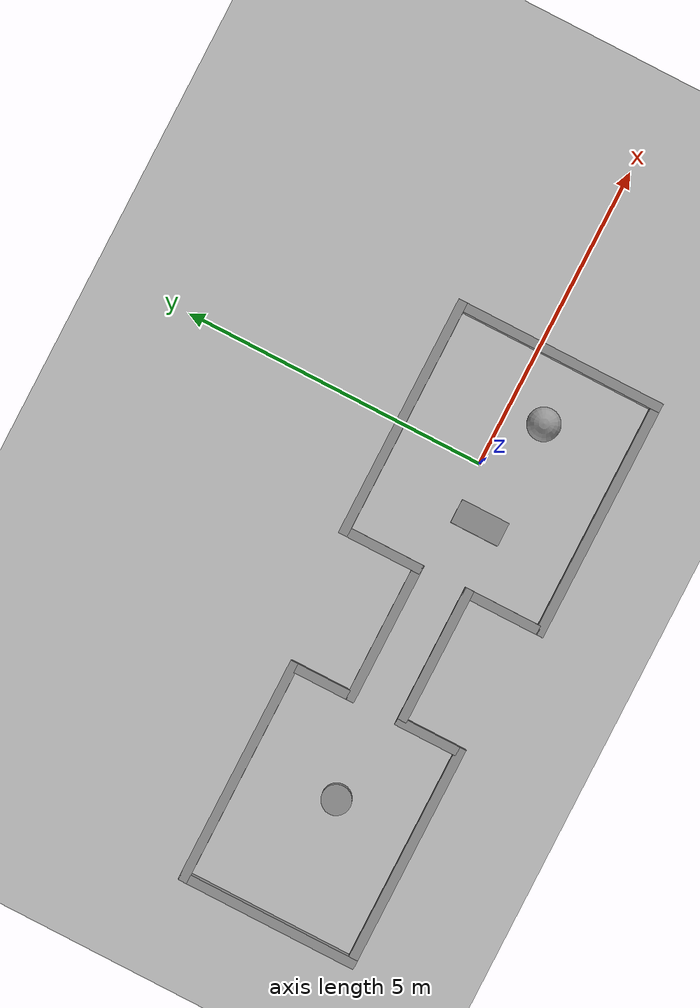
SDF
<sdf version="1.7">
 <world name="default">
  <light name="sun" type="directional">
   <pose>0 0 10 0 -0 0</pose>
   <diffuse>0.8 0.8 0.8 1</diffuse>
   <specular>0.2 0.2 0.2 1</specular>
   <attenuation>
    <range>1000</range>
    <constant>0.9</constant>
    <linear>0.01</linear>
    <quadratic>0.001</quadratic>
   </attenuation>
   <direction>-0.5 0.1 -0.9</direction>
   <spot><inner_angle>0</inner_angle><outer_angle>0</outer_angle><falloff>0</falloff></spot>
  </light>
  <model name="2rooms">
   <pose>-2.825 -0.314022 -1.05149 0.00093 -0 0</pose>
   <link name="Wall_15">
    <collision name="Wall_15_Collision">
     <geometry><box><size>4 0.15 0.4</size></box></geometry>
     <pose>0 0 1.25 0 -0 0</pose>
    </collision>
    <visual name="Wall_15_Visual">
     <pose>0 0 1.25 0 -0 0</pose>
     <geometry><box><size>4 0.15 0.4</size></box></geometry>
     <material>
      <script><uri>file://media/materials/scripts/gazebo.material</uri><name>Gazebo/Grey</name></script>
      <ambient>1 1 1 1</ambient>
     </material>
     <meta><layer>0</layer></meta>
    </visual>
    <pose>2.9 1.675 0 0 -0 0</pose>
    <inertial>
     <inertia><ixx>1</ixx><ixy>0</ixy><ixz>0</ixz><iyy>1</iyy><iyz>0</iyz><izz>1</izz></inertia>
     <mass>1</mass>
    </inertial>
    <kinematic>1</kinematic>
   </link>
   <link name="Wall_16">
    <collision name="Wall_16_Collision">
     <geometry><box><size>3.5 0.15 0.4</size></box></geometry>
     <pose>0 0 1.25 0 -0 0</pose>
    </collision>
    <visual name="Wall_16_Visual">
     <pose>0 0 1.25 0 -0 0</pose>
     <geometry><box><size>3.5 0.15 0.4</size></box></geometry>
     <material>
      <script><uri>file://media/materials/scripts/gazebo.material</uri><name>Gazebo/Grey</name></script>
      <ambient>1 1 1 1</ambient>
     </material>
     <meta><layer>0</layer></meta>
    </visual>
    <pose>4.825 0 0 0 -0 -1.5708</pose>
    <inertial>
     <inertia><ixx>1</ixx><ixy>0</ixy><ixz>0</ixz><iyy>1</iyy><iyz>0</iyz><izz>1</izz></inertia>
     <mass>1</mass>
    </inertial>
    <kinematic>1</kinematic>
   </link>
   <link name="Wall_17">
    <collision name="Wall_17_Collision">
     <geometry><box><size>4 0.15 0.4</size></box></geometry>
     <pose>0 0 1.25 0 -0 0</pose>
    </collision>
    <visual name="Wall_17_Visual">
     <pose>0 0 1.25 0 -0 0</pose>
     <geometry><box><size>4 0.15 0.4</size></box></geometry>
     <material>
      <script><uri>file://media/materials/scripts/gazebo.material</uri><name>Gazebo/Grey</name></script>
      <ambient>1 1 1 1</ambient>
     </material>
     <meta><layer>0</layer></meta>
    </visual>
    <pose>2.9 -1.675 0 0 -0 3.14159</pose>
    <inertial>
     <inertia><ixx>1</ixx><ixy>0</ixy><ixz>0</ixz><iyy>1</iyy><iyz>0</iyz><izz>1</izz></inertia>
     <mass>1</mass>
    </inertial>
    <kinematic>1</kinematic>
   </link>
   <link name="Wall_18">
    <collision name="Wall_18_Collision">
     <geometry><box><size>1.3 0.15 0.4</size></box></geometry>
     <pose>0 0 1.25 0 -0 0</pose>
    </collision>
    <visual name="Wall_18_Visual">
     <pose>0 0 1.25 0 -0 0</pose>
     <geometry><box><size>1.3 0.15 0.4</size></box></geometry>
     <material>
      <script><uri>file://media/materials/scripts/gazebo.material</uri><name>Gazebo/Grey</name></script>
      <ambient>1 1 1 1</ambient>
     </material>
     <meta><layer>0</layer></meta>
    </visual>
    <pose>0.975 -1 0 0 -0 1.5708</pose>
    <inertial>
     <inertia><ixx>1</ixx><ixy>0</ixy><ixz>0</ixz><iyy>1</iyy><iyz>0</iyz><izz>1</izz></inertia>
     <mass>1</mass>
    </inertial>
    <kinematic>1</kinematic>
   </link>
   <link name="Wall_19">
    <collision name="Wall_19_Collision">
     <geometry><box><size>2.25 0.15 0.4</size></box></geometry>
     <pose>0 0.1 1.25 0 -0 0</pose>
    </collision>
    <visual name="Wall_19_Visual">
     <pose>0 0.1 1.25 0 -0 0</pose>
     <geometry><box><size>2.25 0.15 0.4</size></box></geometry>
     <material>
      <script><uri>file://media/materials/scripts/gazebo.material</uri><name>Gazebo/Grey</name></script>
      <ambient>1 1 1 1</ambient>
     </material>
     <meta><layer>0</layer></meta>
    </visual>
    <pose>-0.075 -0.325 0 0 -0 3.14159</pose>
    <inertial>
     <inertia><ixx>1</ixx><ixy>0</ixy><ixz>0</ixz><iyy>1</iyy><iyz>0</iyz><izz>1</izz></inertia>
     <mass>1</mass>
    </inertial>
    <kinematic>1</kinematic>
   </link>
   <link name="Wall_27">
    <collision name="Wall_27_Collision">
     <geometry><box><size>2.35 0.15 0.4</size></box></geometry>
     <pose>0 0.1 1.25 0 -0 0</pose>
    </collision>
    <visual name="Wall_27_Visual">
     <pose>0 0.1 1.25 0 -0 0</pose>
     <geometry><box><size>2.35 0.15 0.4</size></box></geometry>
     <material>
      <script><uri>file://media/materials/scripts/gazebo.material</uri><name>Gazebo/Grey</name></script>
      <ambient>1 1 1 1</ambient>
     </material>
     <meta><layer>0</layer></meta>
    </visual>
    <pose>-0.125 0.325 0 0 -0 0</pose>
    <inertial>
     <inertia><ixx>1</ixx><ixy>0</ixy><ixz>0</ixz><iyy>1</iyy><iyz>0</iyz><izz>1</izz></inertia>
     <mass>1</mass>
    </inertial>
    <kinematic>1</kinematic>
   </link>
   <link name="Wall_28">
    <collision name="Wall_28_Collision">
     <geometry><box><size>1.3 0.15 0.4</size></box></geometry>
     <pose>0 0 1.25 0 -0 0</pose>
    </collision>
    <visual name="Wall_28_Visual">
     <pose>0 0 1.25 0 -0 0</pose>
     <geometry><box><size>1.3 0.15 0.4</size></box></geometry>
     <material>
      <script><uri>file://media/materials/scripts/gazebo.material</uri><name>Gazebo/Grey</name></script>
      <ambient>1 1 1 1</ambient>
     </material>
     <meta><layer>0</layer></meta>
    </visual>
    <pose>0.975 1 0 0 -0 1.5708</pose>
    <inertial>
     <inertia><ixx>1</ixx><ixy>0</ixy><ixz>0</ixz><iyy>1</iyy><iyz>0</iyz><izz>1</izz></inertia>
     <mass>1</mass>
    </inertial>
    <kinematic>1</kinematic>
   </link>
   <link name="Wall_30">
    <collision name="Wall_30_Collision">
     <geometry><box><size>3 0.15 0.4</size></box></geometry>
     <pose>0 0 1.25 0 -0 0</pose>
    </collision>
    <visual name="Wall_30_Visual">
     <pose>0 0 1.25 0 -0 0</pose>
     <geometry><box><size>3 0.15 0.4</size></box></geometry>
     <material>
      <script><uri>file://media/materials/scripts/gazebo.material</uri><name>Gazebo/Grey</name></script>
      <ambient>1 1 1 1</ambient>
     </material>
     <meta><layer>0</layer></meta>
    </visual>
    <pose>-4.825 0 0 0 -0 1.5708</pose>
    <inertial>
     <inertia><ixx>1</ixx><ixy>0</ixy><ixz>0</ixz><iyy>1</iyy><iyz>0</iyz><izz>1</izz></inertia>
     <mass>1</mass>
    </inertial>
    <kinematic>1</kinematic>
   </link>
   <link name="Wall_31">
    <collision name="Wall_31_Collision">
     <geometry><box><size>3.75 0.15 0.4</size></box></geometry>
     <pose>0 0 1.25 0 -0 0</pose>
    </collision>
    <visual name="Wall_31_Visual">
     <pose>0 0 1.25 0 -0 0</pose>
     <geometry><box><size>3.75 0.15 0.4</size></box></geometry>
     <material>
      <script><uri>file://media/materials/scripts/gazebo.material</uri><name>Gazebo/Grey</name></script>
      <ambient>1 1 1 1</ambient>
     </material>
     <meta><layer>0</layer></meta>
    </visual>
    <pose>-3.025 1.425 0 0 -0 0</pose>
    <inertial>
     <inertia><ixx>1</ixx><ixy>0</ixy><ixz>0</ixz><iyy>1</iyy><iyz>0</iyz><izz>1</izz></inertia>
     <mass>1</mass>
    </inertial>
    <kinematic>1</kinematic>
   </link>
   <link name="Wall_35">
    <collision name="Wall_35_Collision">
     <geometry><box><size>1.0 0.15 0.4</size></box></geometry>
     <pose>0 0 1.25 0 -0 0</pose>
    </collision>
    <visual name="Wall_35_Visual">
     <pose>0 0 1.25 0 -0 0</pose>
     <geometry><box><size>1.0 0.15 0.4</size></box></geometry>
     <material>
      <script><uri>file://media/materials/scripts/gazebo.material</uri><name>Gazebo/Grey</name></script>
      <ambient>1 1 1 1</ambient>
     </material>
     <meta><layer>0</layer></meta>
    </visual>
    <pose>-1.225 0.875 0 0 -0 -1.5708</pose>
    <inertial>
     <inertia><ixx>1</ixx><ixy>0</ixy><ixz>0</ixz><iyy>1</iyy><iyz>0</iyz><izz>1</izz></inertia>
     <mass>1</mass>
    </inertial>
    <kinematic>1</kinematic>
   </link>
   <link name="Wall_37">
    <collision name="Wall_37_Collision">
     <geometry><box><size>3.75 0.15 0.4</size></box></geometry>
     <pose>0 0 1.25 0 -0 0</pose>
    </collision>
    <visual name="Wall_37_Visual">
     <pose>0 0 1.25 0 -0 0</pose>
     <geometry><box><size>3.75 0.15 0.4</size></box></geometry>
     <material>
      <script><uri>file://media/materials/scripts/gazebo.material</uri><name>Gazebo/Grey</name></script>
      <ambient>1 1 1 1</ambient>
     </material>
     <meta><layer>0</layer></meta>
    </visual>
    <pose>-3.025 -1.425 0 0 -0 0</pose>
    <inertial>
     <inertia><ixx>1</ixx><ixy>0</ixy><ixz>0</ixz><iyy>1</iyy><iyz>0</iyz><izz>1</izz></inertia>
     <mass>1</mass>
    </inertial>
    <kinematic>1</kinematic>
   </link>
   <link name="Wall_38">
    <collision name="Wall_38_Collision">
     <geometry><box><size>1.05 0.15 0.4</size></box></geometry>
     <pose>0 0 1.25 0 -0 0</pose>
    </collision>
    <visual name="Wall_38_Visual">
     <pose>0 0 1.25 0 -0 0</pose>
     <geometry><box><size>1.05 0.15 0.4</size></box></geometry>
     <material>
      <script><uri>file://media/materials/scripts/gazebo.material</uri><name>Gazebo/Grey</name></script>
      <ambient>1 1 1 1</ambient>
     </material>
     <meta><layer>0</layer></meta>
    </visual>
    <pose>-1.225 -0.875 0 0 -0 1.5708</pose>
    <inertial>
     <inertia><ixx>1</ixx><ixy>0</ixy><ixz>0</ixz><iyy>1</iyy><iyz>0</iyz><izz>1</izz></inertia>
     <mass>1</mass>
    </inertial>
    <kinematic>1</kinematic>
   </link>
   <static>0</static>
  </model>
  <model name="ground_plane">
   <static>1</static>
   <link name="link">
    <collision name="collision">
     <geometry><plane><normal>0 0 1</normal><size>100 100</size></plane></geometry>
     <surface><friction><ode><mu>100</mu><mu2>50</mu2></ode></friction></surface>
    </collision>
    <visual name="visual">
     <cast_shadows>0</cast_shadows>
     <geometry><plane><normal>0 0 1</normal><size>100 100</size></plane></geometry>
     <material>
      <script><uri>file://media/materials/scripts/gazebo.material</uri><name>Gazebo/Grey</name></script>
     </material>
    </visual>
    <kinematic>1</kinematic>
   </link>
  </model>
  <gravity>0 0 -9.8</gravity>
  <magnetic_field>6e-06 2.3e-05 -4.2e-05</magnetic_field>
  <atmosphere type="adiabatic"/>
  <physics type="ode">
   <max_step_size>0.001</max_step_size>
   <real_time_factor>1</real_time_factor>
   <real_time_update_rate>1000</real_time_update_rate>
  </physics>
  <scene><ambient>0.4 0.4 0.4 1</ambient><background>0.7 0.7 0.7 1</background><shadows>1</shadows></scene>
  <spherical_coordinates>
   <surface_model>EARTH_WGS84</surface_model>
   <latitude_deg>0</latitude_deg>
   <longitude_deg>0</longitude_deg>
   <elevation>0</elevation>
   <heading_deg>0</heading_deg>
  </spherical_coordinates>
  <model name="unit_box">
   <link name="link">
    <inertial>
     <mass>0.109627</mass>
     <inertia>
      <ixx>0.00699833</ixx>
      <ixy>0</ixy>
      <ixz>0</ixz>
      <iyy>0.00251217</iyy>
      <iyz>0</iyz>
      <izz>0.0073018</izz>
     </inertia>
    </inertial>
    <kinematic>1</kinematic>
    <pose>0.089784 -0.005804 -0.243894 0 -0 0</pose>
    <visual name="visual">
     <geometry><box><size>0.392559 0.803222 0.347683</size></box></geometry>
     <material>
      <script><name>Gazebo/Grey</name><uri>file://media/materials/scripts/gazebo.material</uri></script>
      <shader type="pixel"/>
     </material>
    </visual>
    <collision name="collision">
     <geometry><box><size>0.392559 0.803222 0.347683</size></box></geometry>
     <surface>
      <friction>
       <ode><mu>1</mu><mu2>1</mu2><fdir1>0 0 0</fdir1><slip1>0</slip1><slip2>0</slip2></ode>
       <torsional>
        <coefficient>1</coefficient>
        <patch_radius>0</patch_radius>
        <surface_radius>0</surface_radius>
        <use_patch_radius>1</use_patch_radius>
        <ode><slip>0</slip></ode>
       </torsional>
      </friction>
      <bounce><restitution_coefficient>0</restitution_coefficient><threshold>1e+06</threshold></bounce>
      <contact>
       <collide_without_contact>0</collide_without_contact>
       <collide_without_contact_bitmask>1</collide_without_contact_bitmask>
       <collide_bitmask>1</collide_bitmask>
       <ode>
        <soft_cfm>0</soft_cfm>
        <soft_erp>0.2</soft_erp>
        <kp>1e+13</kp>
        <kd>1</kd>
        <max_vel>0.01</max_vel>
        <min_depth>0</min_depth>
       </ode>
       <bullet>
        <split_impulse>1</split_impulse>
        <split_impulse_penetration_threshold>-0.01</split_impulse_penetration_threshold>
        <soft_cfm>0</soft_cfm>
        <soft_erp>0.2</soft_erp>
        <kp>1e+13</kp>
        <kd>1</kd>
       </bullet>
      </contact>
     </surface>
    </collision>
   </link>
   <link name="link_0">
    <inertial>
     <mass>0.154178</mass>
     <inertia>
      <ixx>0.00443302</ixx>
      <ixy>0</ixy>
      <ixz>0</ixz>
      <iyy>0.00443302</iyy>
      <iyz>0</iyz>
      <izz>0.00443302</izz>
     </inertia>
    </inertial>
    <pose>1.87133 -0.183001 -0.243894 0 -0 0</pose>
    <visual name="visual">
     <geometry><sphere><radius>0.268108</radius></sphere></geometry>
     <material>
      <lighting>1</lighting>
      <script><uri>file://media/materials/scripts/gazebo.material</uri><name>Gazebo/Grey</name></script>
      <shader type="pixel"/>
     </material>
    </visual>
    <collision name="collision">
     <geometry><sphere><radius>0.268108</radius></sphere></geometry>
     <surface>
      <friction>
       <ode><mu>1</mu><mu2>1</mu2><fdir1>0 0 0</fdir1><slip1>0</slip1><slip2>0</slip2></ode>
       <torsional>
        <coefficient>1</coefficient>
        <patch_radius>0</patch_radius>
        <surface_radius>0</surface_radius>
        <use_patch_radius>1</use_patch_radius>
        <ode><slip>0</slip></ode>
       </torsional>
      </friction>
      <bounce><restitution_coefficient>0</restitution_coefficient><threshold>1e+06</threshold></bounce>
      <contact>
       <collide_without_contact>0</collide_without_contact>
       <collide_without_contact_bitmask>1</collide_without_contact_bitmask>
       <collide_bitmask>1</collide_bitmask>
       <ode>
        <soft_cfm>0</soft_cfm>
        <soft_erp>0.2</soft_erp>
        <kp>1e+13</kp>
        <kd>1</kd>
        <max_vel>0.01</max_vel>
        <min_depth>0</min_depth>
       </ode>
       <bullet>
        <split_impulse>1</split_impulse>
        <split_impulse_penetration_threshold>-0.01</split_impulse_penetration_threshold>
        <soft_cfm>0</soft_cfm>
        <soft_erp>0.2</soft_erp>
        <kp>1e+13</kp>
        <kd>1</kd>
       </bullet>
      </contact>
     </surface>
    </collision>
    <kinematic>1</kinematic>
   </link>
   <link name="link_1">
    <inertial>
     <mass>0.103896</mass>
     <inertia>
      <ixx>0.00326823</ixx>
      <ixy>0</ixy>
      <ixz>0</ixz>
      <iyy>0.00326823</iyy>
      <iyz>0</iyz>
      <izz>0.0029753</izz>
     </inertia>
    </inertial>
    <pose>-4.64664 0.003473 -0.243894 0 -0 0</pose>
    <visual name="visual">
     <geometry><cylinder><radius>0.239321</radius><length>0.453494</length></cylinder></geometry>
     <material>
      <lighting>1</lighting>
      <script><uri>file://media/materials/scripts/gazebo.material</uri><name>Gazebo/Grey</name></script>
      <shader type="pixel"/>
     </material>
    </visual>
    <collision name="collision">
     <geometry><cylinder><radius>0.239321</radius><length>0.453494</length></cylinder></geometry>
     <surface>
      <friction>
       <ode><mu>1</mu><mu2>1</mu2><fdir1>0 0 0</fdir1><slip1>0</slip1><slip2>0</slip2></ode>
       <torsional>
        <coefficient>1</coefficient>
        <patch_radius>0</patch_radius>
        <surface_radius>0</surface_radius>
        <use_patch_radius>1</use_patch_radius>
        <ode><slip>0</slip></ode>
       </torsional>
      </friction>
      <bounce><restitution_coefficient>0</restitution_coefficient><threshold>1e+06</threshold></bounce>
      <contact>
       <collide_without_contact>0</collide_without_contact>
       <collide_without_contact_bitmask>1</collide_without_contact_bitmask>
       <collide_bitmask>1</collide_bitmask>
       <ode>
        <soft_cfm>0</soft_cfm>
        <soft_erp>0.2</soft_erp>
        <kp>1e+13</kp>
        <kd>1</kd>
        <max_vel>0.01</max_vel>
        <min_depth>0</min_depth>
       </ode>
       <bullet>
        <split_impulse>1</split_impulse>
        <split_impulse_penetration_threshold>-0.01</split_impulse_penetration_threshold>
        <soft_cfm>0</soft_cfm>
        <soft_erp>0.2</soft_erp>
        <kp>1e+13</kp>
        <kd>1</kd>
       </bullet>
      </contact>
     </surface>
    </collision>
    <kinematic>1</kinematic>
   </link>
   <static>0</static>
   <pose>-0.897321 -0.407736 0.5 0 -0 0</pose>
  </model>
 </world>
</sdf>
